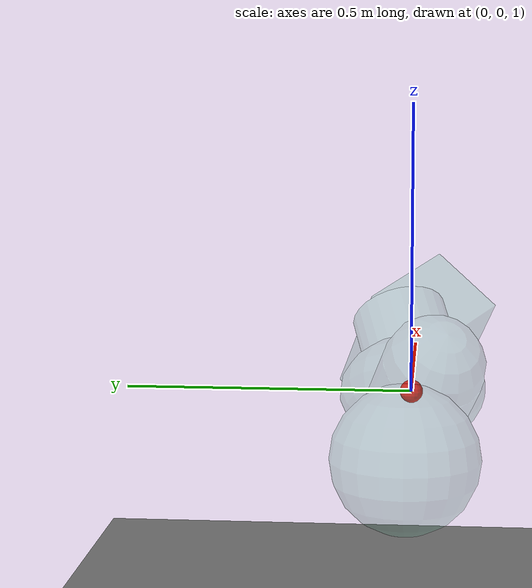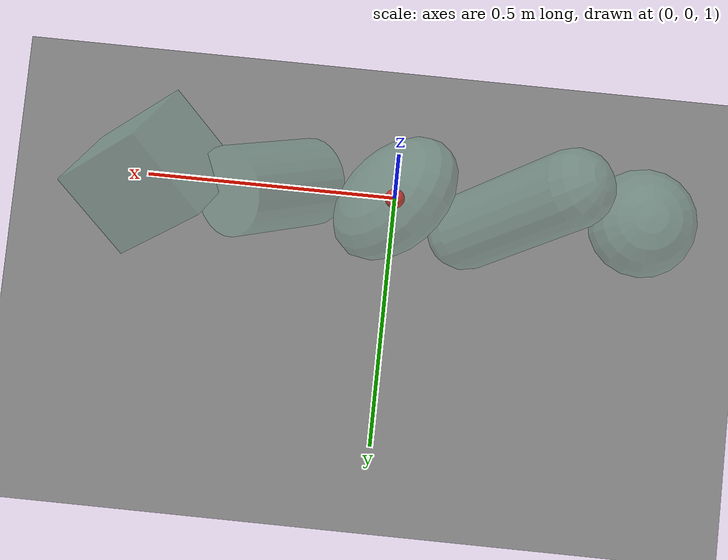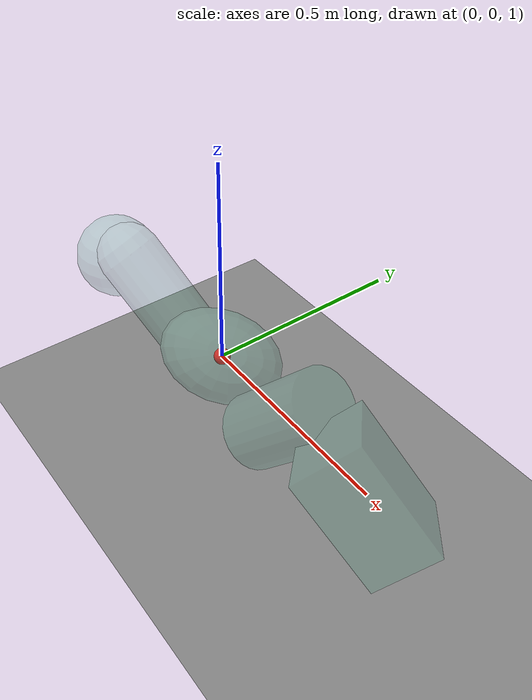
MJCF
<mujoco model="insidesite sensor">

  <default>
    <site rgba=".4 .7 .6 .3"/>
  </default>

  <worldbody>
    <light pos="0 0 3"/>
    <geom name="plane" type="plane" pos="0 0 .5" size="2 2 .01" rgba="0.5 0.5 0.5 1"/>

    <body pos="0 0 1">
      <joint type="slide" axis="1 0 0" range="-.7 .7" solreflimit="-200 0"/>
      <geom name="query" type="sphere" size=".02" rgba="1 0 0 1"/>
    </body>

    <site name="sphere"    type="sphere"    size=".11"                           pos="-.5 0 1"/>
    <site name="capsule"   type="capsule"   size=".08 .15"     euler="20 -40 60" pos="-.25 0 1"/>
    <site name="ellipsoid" type="ellipsoid" size=".11 .15 .09" euler="20 40 -60" pos="0 0 1"/>
    <site name="cylinder"  type="cylinder"  size=".09 .12"     euler="-20 40 60" pos=".25 0 1"/>
    <site name="box"       type="box"       size=".08 .1 .14"  euler="20 -40 60" pos=".5 0 1"/>
  </worldbody>

  <sensor>
    <insidesite name="sphere"    site="sphere"    objtype="geom" objname="query"/>
    <insidesite name="capsule"   site="capsule"   objtype="geom" objname="query"/>
    <insidesite name="ellipsoid" site="ellipsoid" objtype="geom" objname="query"/>
    <insidesite name="cylinder"  site="cylinder"  objtype="geom" objname="query"/>
    <insidesite name="box"       site="box"       objtype="geom" objname="query"/>
  </sensor>

  <keyframe>
    <key qvel="1"/>
  </keyframe>
</mujoco>
